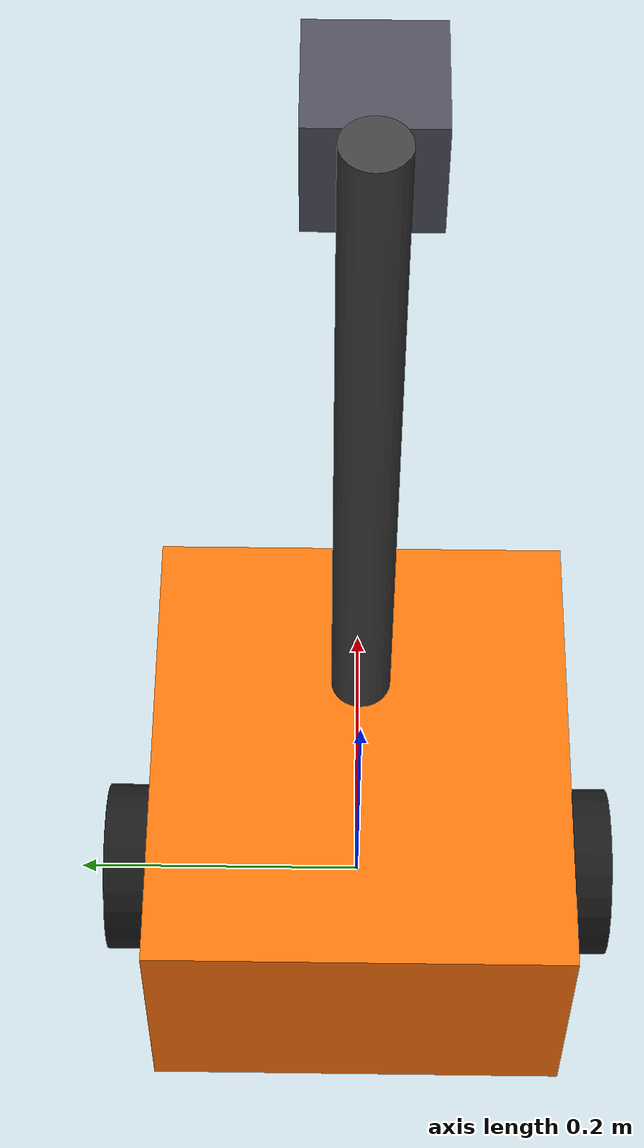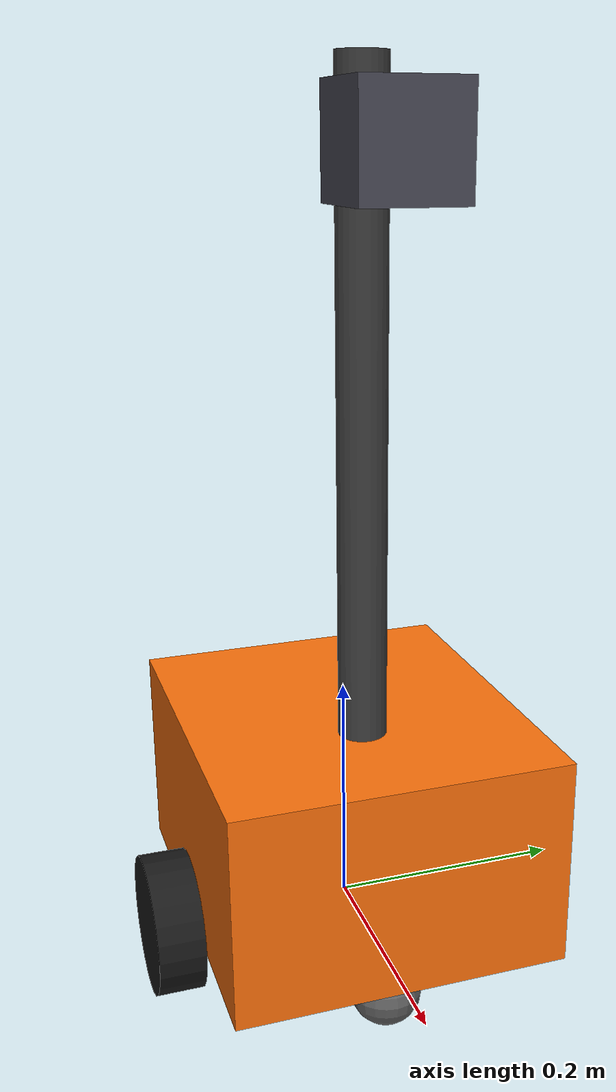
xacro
<?xml version="1.0"?>
<robot name="tomato_bot" xmlns:xacro="http://www.ros.org/wiki/xacro">

  <!-- 底座尺寸可由 launch / base_size.yaml 覆盖；默认已按防卡脚缩小 -->
  <xacro:arg name="base_x" default="0.32"/>
  <xacro:arg name="base_y" default="0.28"/>
  <xacro:arg name="base_z" default="0.18"/>
  <xacro:arg name="wheel_separation" default="0.32"/>

  <xacro:property name="base_x" value="$(arg base_x)"/>
  <xacro:property name="base_y" value="$(arg base_y)"/>
  <xacro:property name="base_z" value="$(arg base_z)"/>
  <xacro:property name="base_mass" value="12.0"/>
  <xacro:property name="wheel_radius" value="0.06"/>
  <xacro:property name="wheel_width" value="0.04"/>
  <xacro:property name="wheel_separation" value="$(arg wheel_separation)"/>
  <xacro:property name="wheel_mass" value="0.8"/>
  <xacro:property name="caster_radius" value="0.03"/>
  <xacro:property name="mast_height" value="0.52"/>
  <xacro:property name="mast_radius" value="0.02"/>
  <xacro:property name="camera_height" value="0.70"/>
  <xacro:property name="camera_size" value="0.08"/>

  <!-- base_link 原点在地面上方 wheel_radius 处 -->
  <link name="base_link">
    <visual>
      <origin xyz="0 0 ${base_z/2}" rpy="0 0 0"/>
      <geometry>
        <box size="${base_x} ${base_y} ${base_z}"/>
      </geometry>
      <material name="orange">
        <color rgba="1.0 0.45 0.05 1.0"/>
      </material>
    </visual>
    <collision>
      <origin xyz="0 0 ${base_z/2}" rpy="0 0 0"/>
      <geometry>
        <box size="${base_x} ${base_y} ${base_z}"/>
      </geometry>
    </collision>
    <inertial>
      <origin xyz="0 0 ${base_z/2}" rpy="0 0 0"/>
      <mass value="${base_mass}"/>
      <inertia
        ixx="${(base_mass/12.0)*(base_y*base_y + base_z*base_z)}"
        ixy="0.0" ixz="0.0"
        iyy="${(base_mass/12.0)*(base_x*base_x + base_z*base_z)}"
        iyz="0.0"
        izz="${(base_mass/12.0)*(base_x*base_x + base_y*base_y)}"/>
    </inertial>
  </link>

  <!-- 驱动轮 -->
  <link name="left_wheel">
    <visual>
      <origin xyz="0 0 0" rpy="1.5708 0 0"/>
      <geometry>
        <cylinder radius="${wheel_radius}" length="${wheel_width}"/>
      </geometry>
      <material name="black">
        <color rgba="0.1 0.1 0.1 1.0"/>
      </material>
    </visual>
    <collision>
      <origin xyz="0 0 0" rpy="1.5708 0 0"/>
      <geometry>
        <cylinder radius="${wheel_radius}" length="${wheel_width}"/>
      </geometry>
    </collision>
    <inertial>
      <mass value="${wheel_mass}"/>
      <inertia ixx="0.0015" ixy="0.0" ixz="0.0" iyy="0.0015" iyz="0.0" izz="0.002"/>
    </inertial>
  </link>

  <link name="right_wheel">
    <visual>
      <origin xyz="0 0 0" rpy="1.5708 0 0"/>
      <geometry>
        <cylinder radius="${wheel_radius}" length="${wheel_width}"/>
      </geometry>
      <material name="black">
        <color rgba="0.1 0.1 0.1 1.0"/>
      </material>
    </visual>
    <collision>
      <origin xyz="0 0 0" rpy="1.5708 0 0"/>
      <geometry>
        <cylinder radius="${wheel_radius}" length="${wheel_width}"/>
      </geometry>
    </collision>
    <inertial>
      <mass value="${wheel_mass}"/>
      <inertia ixx="0.0015" ixy="0.0" ixz="0.0" iyy="0.0015" iyz="0.0" izz="0.002"/>
    </inertial>
  </link>

  <joint name="left_wheel_joint" type="continuous">
    <parent link="base_link"/>
    <child link="left_wheel"/>
    <origin xyz="0 ${wheel_separation/2} 0" rpy="0 0 0"/>
    <axis xyz="0 1 0"/>
  </joint>

  <joint name="right_wheel_joint" type="continuous">
    <parent link="base_link"/>
    <child link="right_wheel"/>
    <origin xyz="0 -${wheel_separation/2} 0" rpy="0 0 0"/>
    <axis xyz="0 1 0"/>
  </joint>

  <!-- 前脚轮，防倾覆 -->
  <link name="front_caster">
    <visual>
      <geometry>
        <sphere radius="${caster_radius}"/>
      </geometry>
      <material name="gray">
        <color rgba="0.4 0.4 0.4 1.0"/>
      </material>
    </visual>
    <collision>
      <geometry>
        <sphere radius="${caster_radius}"/>
      </geometry>
    </collision>
    <inertial>
      <mass value="0.2"/>
      <inertia ixx="0.0001" ixy="0.0" ixz="0.0" iyy="0.0001" iyz="0.0" izz="0.0001"/>
    </inertial>
  </link>

  <joint name="front_caster_joint" type="fixed">
    <parent link="base_link"/>
    <child link="front_caster"/>
    <origin xyz="${base_x/2 - 0.05} 0 ${caster_radius - wheel_radius}" rpy="0 0 0"/>
  </joint>

  <!-- 后脚轮，防倾覆 -->
  <link name="rear_caster">
    <visual>
      <geometry>
        <sphere radius="${caster_radius}"/>
      </geometry>
      <material name="gray">
        <color rgba="0.4 0.4 0.4 1.0"/>
      </material>
    </visual>
    <collision>
      <geometry>
        <sphere radius="${caster_radius}"/>
      </geometry>
    </collision>
    <inertial>
      <mass value="0.2"/>
      <inertia ixx="0.0001" ixy="0.0" ixz="0.0" iyy="0.0001" iyz="0.0" izz="0.0001"/>
    </inertial>
  </link>

  <joint name="rear_caster_joint" type="fixed">
    <parent link="base_link"/>
    <child link="rear_caster"/>
    <origin xyz="${-base_x/2 + 0.05} 0 ${caster_radius - wheel_radius}" rpy="0 0 0"/>
  </joint>

  <!-- 相机桅杆 -->
  <link name="mast_link">
    <visual>
      <origin xyz="0 0 ${mast_height/2}" rpy="0 0 0"/>
      <geometry>
        <cylinder radius="${mast_radius}" length="${mast_height}"/>
      </geometry>
      <material name="dark_gray">
        <color rgba="0.25 0.25 0.25 1.0"/>
      </material>
    </visual>
    <collision>
      <origin xyz="0 0 ${mast_height/2}" rpy="0 0 0"/>
      <geometry>
        <cylinder radius="${mast_radius}" length="${mast_height}"/>
      </geometry>
    </collision>
    <inertial>
      <origin xyz="0 0 ${mast_height/2}" rpy="0 0 0"/>
      <mass value="0.5"/>
      <inertia ixx="0.01" ixy="0.0" ixz="0.0" iyy="0.01" iyz="0.0" izz="0.0002"/>
    </inertial>
  </link>

  <joint name="mast_joint" type="fixed">
    <parent link="base_link"/>
    <child link="mast_link"/>
    <origin xyz="0.05 0 ${base_z}" rpy="0 0 0"/>
  </joint>

  <!-- RGB-D 相机（约 0.7m） -->
  <link name="camera_link">
    <visual>
      <geometry>
        <box size="${camera_size} ${camera_size} ${camera_size}"/>
      </geometry>
      <material name="camera_gray">
        <color rgba="0.3 0.3 0.35 1.0"/>
      </material>
    </visual>
    <collision>
      <geometry>
        <box size="${camera_size} ${camera_size} ${camera_size}"/>
      </geometry>
    </collision>
    <inertial>
      <mass value="0.15"/>
      <inertia ixx="0.0002" ixy="0.0" ixz="0.0" iyy="0.0002" iyz="0.0" izz="0.0002"/>
    </inertial>
  </link>

  <joint name="camera_joint" type="fixed">
    <parent link="base_link"/>
    <child link="camera_link"/>
    <!-- base_link 原点在轮心高度；相机相对地面约 camera_height -->
    <origin xyz="0.12 0 ${camera_height - wheel_radius}" rpy="0 0 0"/>
  </joint>

  <link name="camera_depth_optical_frame"/>
  <joint name="camera_depth_optical_joint" type="fixed">
    <parent link="camera_link"/>
    <child link="camera_depth_optical_frame"/>
    <origin xyz="0 0 0" rpy="-1.5708 0 -1.5708"/>
  </joint>

  <!-- 差速驱动插件 -->
  <gazebo>
    <plugin name="tomato_bot_diff_drive" filename="libgazebo_ros_diff_drive.so">
      <ros>
        <remapping>cmd_vel:=cmd_vel</remapping>
        <remapping>odom:=odom</remapping>
      </ros>
      <left_joint>left_wheel_joint</left_joint>
      <right_joint>right_wheel_joint</right_joint>
      <wheel_separation>${wheel_separation}</wheel_separation>
      <wheel_diameter>${2.0 * wheel_radius}</wheel_diameter>
      <max_wheel_torque>30.0</max_wheel_torque>
      <max_wheel_acceleration>2.0</max_wheel_acceleration>
      <publish_odom>true</publish_odom>
      <publish_odom_tf>true</publish_odom_tf>
      <publish_wheel_tf>true</publish_wheel_tf>
      <odometry_frame>odom</odometry_frame>
      <robot_base_frame>base_link</robot_base_frame>
      <update_rate>50</update_rate>
    </plugin>
  </gazebo>

  <!-- RGB-D 深度相机：libgazebo_ros_camera.so + sensor type=depth -->
  <gazebo reference="camera_link">
    <sensor name="camera" type="depth">
      <always_on>true</always_on>
      <update_rate>15</update_rate>
      <visualize>false</visualize>
      <camera name="camera">
        <horizontal_fov>1.3962634</horizontal_fov>
        <image>
          <width>640</width>
          <height>480</height>
          <format>R8G8B8</format>
        </image>
        <depth_camera>
          <output>depths</output>
        </depth_camera>
        <clip>
          <near>0.05</near>
          <far>10.0</far>
        </clip>
      </camera>
      <plugin name="camera_controller" filename="libgazebo_ros_camera.so">
        <ros>
          <namespace>/</namespace>
          <remapping>~/image_raw:=camera/color/image_raw</remapping>
          <remapping>~/camera_info:=camera/color/camera_info</remapping>
          <remapping>~/depth/image_raw:=camera/depth/image_raw</remapping>
          <remapping>~/depth/camera_info:=camera/depth/camera_info</remapping>
          <remapping>~/points:=camera/points</remapping>
        </ros>
        <camera_name>camera</camera_name>
        <frame_name>camera_depth_optical_frame</frame_name>
        <hack_baseline>0.07</hack_baseline>
        <min_depth>0.05</min_depth>
        <max_depth>10.0</max_depth>
      </plugin>
    </sensor>
  </gazebo>

  <!-- 轮子摩擦系数 -->
  <gazebo reference="left_wheel">
    <mu1>1.0</mu1>
    <mu2>1.0</mu2>
    <kp>1000000.0</kp>
    <kd>100.0</kd>
  </gazebo>
  <gazebo reference="right_wheel">
    <mu1>1.0</mu1>
    <mu2>1.0</mu2>
    <kp>1000000.0</kp>
    <kd>100.0</kd>
  </gazebo>
  <gazebo reference="front_caster">
    <mu1>0.1</mu1>
    <mu2>0.1</mu2>
    <kp>1000000.0</kp>
    <kd>100.0</kd>
  </gazebo>
  <gazebo reference="rear_caster">
    <mu1>0.1</mu1>
    <mu2>0.1</mu2>
    <kp>1000000.0</kp>
    <kd>100.0</kd>
  </gazebo>

</robot>
